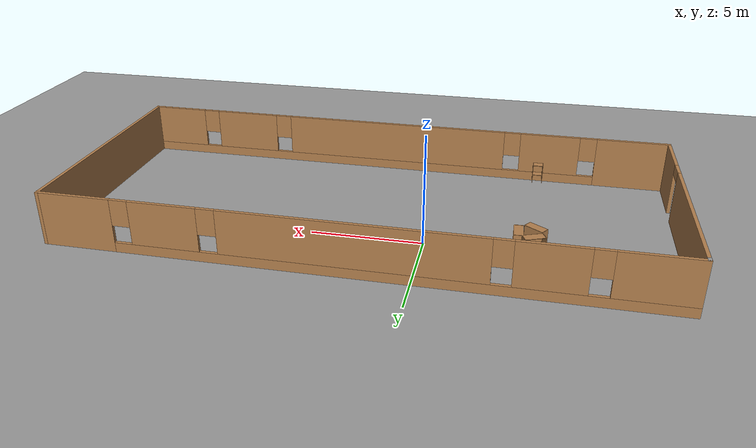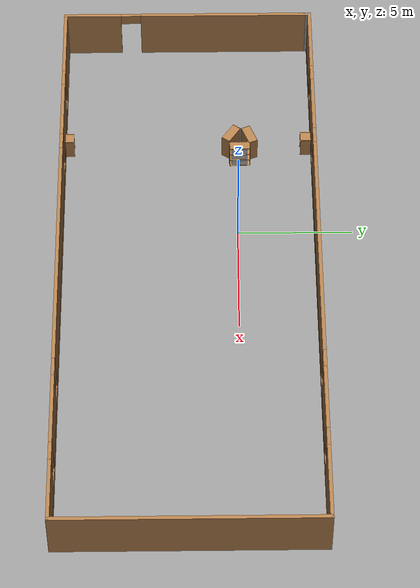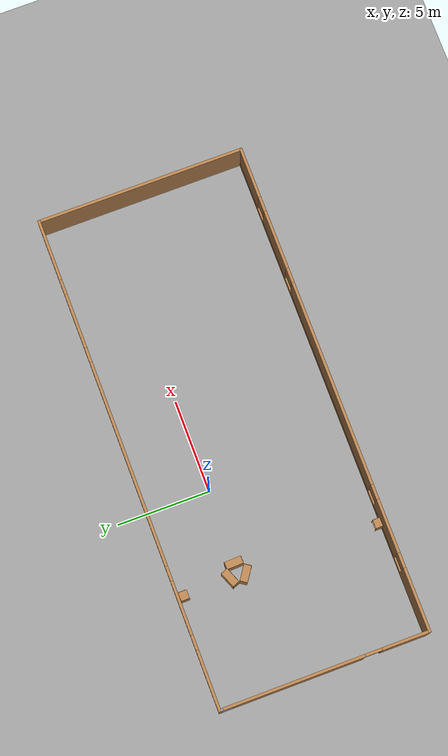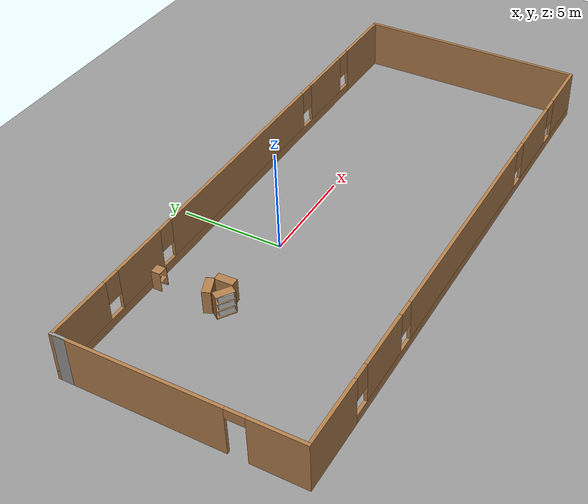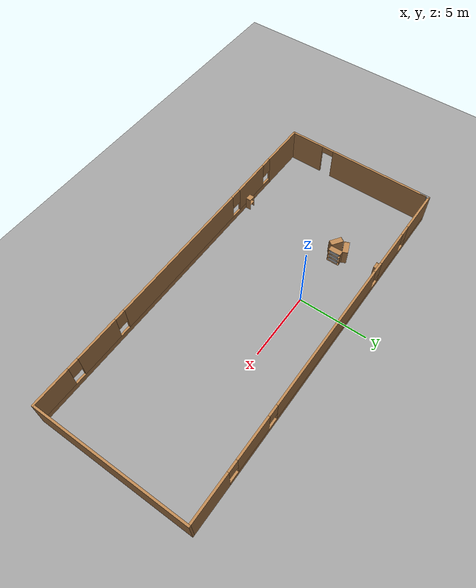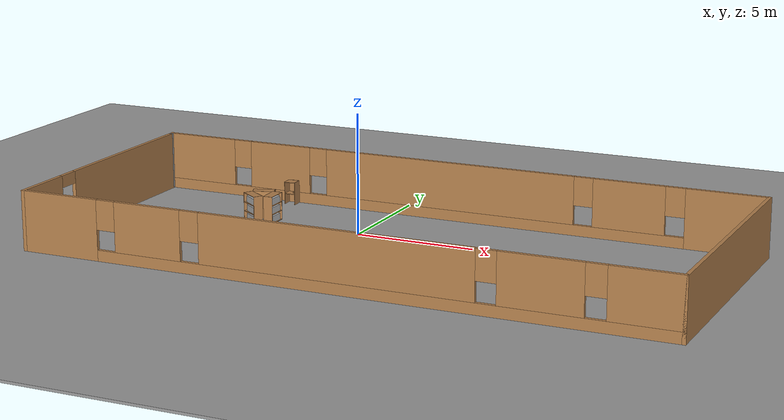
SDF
<sdf version="1.7">
 <world name="default">
  <model name="ground_plane">
   <static>1</static>
   <link name="link">
    <collision name="collision">
     <geometry><plane><normal>0 0 1</normal><size>100 100</size></plane></geometry>
     <surface><friction><ode><mu>100</mu><mu2>50</mu2></ode></friction></surface>
    </collision>
    <visual name="visual">
     <cast_shadows>0</cast_shadows>
     <geometry><plane><normal>0 0 1</normal><size>100 100</size></plane></geometry>
     <material>
      <script><uri>file://media/materials/scripts/gazebo.material</uri><name>Gazebo/Grey</name></script>
     </material>
    </visual>
   </link>
  </model>
  <model name="Library">
   <pose>2.5811 -2.1364 0 0 -0 0</pose>
   <link name="Wall_0">
    <pose>-13.3 -0.125 0 0 -0 -1.5708</pose>
    <visual name="Wall_0_Visual_0">
     <pose>-1.74308 0 1.25 0 -0 0</pose>
     <geometry><box><size>7.51384 0.15 2.5</size></box></geometry>
     <material>
      <script><uri>file://media/materials/scripts/gazebo.material</uri><name>Gazebo/Wood</name></script>
      <ambient>1 1 1 1</ambient>
     </material>
     <meta><layer>0</layer></meta>
    </visual>
    <collision name="Wall_0_Collision_0">
     <geometry><box><size>7.51384 0.15 2.5</size></box></geometry>
     <pose>-1.74308 0 1.25 0 -0 0</pose>
    </collision>
    <visual name="Wall_0_Visual_1">
     <pose>4.20692 0 1.25 0 -0 0</pose>
     <geometry><box><size>2.58616 0.15 2.5</size></box></geometry>
     <material>
      <script><uri>file://media/materials/scripts/gazebo.material</uri><name>Gazebo/Wood</name></script>
      <ambient>1 1 1 1</ambient>
     </material>
     <meta><layer>0</layer></meta>
    </visual>
    <collision name="Wall_0_Collision_1">
     <geometry><box><size>2.58616 0.15 2.5</size></box></geometry>
     <pose>4.20692 0 1.25 0 -0 0</pose>
    </collision>
    <visual name="Wall_0_Visual_2">
     <pose>2.46384 0 2.25 0 -0 0</pose>
     <geometry><box><size>0.9 0.15 0.5</size></box></geometry>
     <material>
      <script><uri>file://media/materials/scripts/gazebo.material</uri><name>Gazebo/Wood</name></script>
      <ambient>1 1 1 1</ambient>
     </material>
     <meta><layer>0</layer></meta>
    </visual>
    <collision name="Wall_0_Collision_2">
     <geometry><box><size>0.9 0.15 0.5</size></box></geometry>
     <pose>2.46384 0 2.25 0 -0 0</pose>
    </collision>
   </link>
   <link name="Wall_1">
    <pose>0 -5.55 0 0 -0 0</pose>
    <visual name="Wall_1_Visual_0">
     <pose>-11.6563 0 1.25 0 -0 0</pose>
     <geometry><box><size>3.43737 0.15 2.5</size></box></geometry>
     <material>
      <script><uri>file://media/materials/scripts/gazebo.material</uri><name>Gazebo/Wood</name></script>
      <ambient>1 1 1 1</ambient>
     </material>
     <meta><layer>0</layer></meta>
    </visual>
    <collision name="Wall_1_Collision_0">
     <geometry><box><size>3.43737 0.15 2.5</size></box></geometry>
     <pose>-11.6563 0 1.25 0 -0 0</pose>
    </collision>
    <visual name="Wall_1_Visual_1">
     <pose>1.71868 0 0.25 0 -0 0</pose>
     <geometry><box><size>23.3126 0.15 0.5</size></box></geometry>
     <material>
      <script><uri>file://media/materials/scripts/gazebo.material</uri><name>Gazebo/Wood</name></script>
      <ambient>1 1 1 1</ambient>
     </material>
     <meta><layer>0</layer></meta>
    </visual>
    <collision name="Wall_1_Collision_1">
     <geometry><box><size>23.3126 0.15 0.5</size></box></geometry>
     <pose>1.71868 0 0.25 0 -0 0</pose>
    </collision>
    <visual name="Wall_1_Visual_2">
     <pose>-7.6969 0 1.5 0 -0 0</pose>
     <geometry><box><size>2.88146 0.15 2</size></box></geometry>
     <material>
      <script><uri>file://media/materials/scripts/gazebo.material</uri><name>Gazebo/Wood</name></script>
      <ambient>1 1 1 1</ambient>
     </material>
     <meta><layer>0</layer></meta>
    </visual>
    <collision name="Wall_1_Collision_2">
     <geometry><box><size>2.88146 0.15 2</size></box></geometry>
     <pose>-7.6969 0 1.5 0 -0 0</pose>
    </collision>
    <visual name="Wall_1_Visual_3">
     <pose>0.131252 0 1.5 0 -0 0</pose>
     <geometry><box><size>11.1749 0.15 2</size></box></geometry>
     <material>
      <script><uri>file://media/materials/scripts/gazebo.material</uri><name>Gazebo/Wood</name></script>
      <ambient>1 1 1 1</ambient>
     </material>
     <meta><layer>0</layer></meta>
    </visual>
    <collision name="Wall_1_Collision_3">
     <geometry><box><size>11.1749 0.15 2</size></box></geometry>
     <pose>0.131252 0 1.5 0 -0 0</pose>
    </collision>
    <visual name="Wall_1_Visual_4">
     <pose>8.14146 0 1.5 0 -0 0</pose>
     <geometry><box><size>3.24556 0.15 2</size></box></geometry>
     <material>
      <script><uri>file://media/materials/scripts/gazebo.material</uri><name>Gazebo/Wood</name></script>
      <ambient>1 1 1 1</ambient>
     </material>
     <meta><layer>0</layer></meta>
    </visual>
    <collision name="Wall_1_Collision_4">
     <geometry><box><size>3.24556 0.15 2</size></box></geometry>
     <pose>8.14146 0 1.5 0 -0 0</pose>
    </collision>
    <visual name="Wall_1_Visual_5">
     <pose>11.9696 0 1.5 0 -0 0</pose>
     <geometry><box><size>2.81076 0.15 2</size></box></geometry>
     <material>
      <script><uri>file://media/materials/scripts/gazebo.material</uri><name>Gazebo/Wood</name></script>
      <ambient>1 1 1 1</ambient>
     </material>
     <meta><layer>0</layer></meta>
    </visual>
    <collision name="Wall_1_Collision_5">
     <geometry><box><size>2.81076 0.15 2</size></box></geometry>
     <pose>11.9696 0 1.5 0 -0 0</pose>
    </collision>
    <visual name="Wall_1_Visual_6">
     <pose>-9.53763 0 1.9 0 -0 0</pose>
     <geometry><box><size>0.8 0.15 1.2</size></box></geometry>
     <material>
      <script><uri>file://media/materials/scripts/gazebo.material</uri><name>Gazebo/Wood</name></script>
      <ambient>1 1 1 1</ambient>
     </material>
     <meta><layer>0</layer></meta>
    </visual>
    <collision name="Wall_1_Collision_6">
     <geometry><box><size>0.8 0.15 1.2</size></box></geometry>
     <pose>-9.53763 0 1.9 0 -0 0</pose>
    </collision>
    <visual name="Wall_1_Visual_7">
     <pose>-5.85617 0 1.9 0 -0 0</pose>
     <geometry><box><size>0.8 0.15 1.2</size></box></geometry>
     <material>
      <script><uri>file://media/materials/scripts/gazebo.material</uri><name>Gazebo/Wood</name></script>
      <ambient>1 1 1 1</ambient>
     </material>
     <meta><layer>0</layer></meta>
    </visual>
    <collision name="Wall_1_Collision_7">
     <geometry><box><size>0.8 0.15 1.2</size></box></geometry>
     <pose>-5.85617 0 1.9 0 -0 0</pose>
    </collision>
    <visual name="Wall_1_Visual_8">
     <pose>6.11868 0 1.9 0 -0 0</pose>
     <geometry><box><size>0.8 0.15 1.2</size></box></geometry>
     <material>
      <script><uri>file://media/materials/scripts/gazebo.material</uri><name>Gazebo/Wood</name></script>
      <ambient>1 1 1 1</ambient>
     </material>
     <meta><layer>0</layer></meta>
    </visual>
    <collision name="Wall_1_Collision_8">
     <geometry><box><size>0.8 0.15 1.2</size></box></geometry>
     <pose>6.11868 0 1.9 0 -0 0</pose>
    </collision>
    <visual name="Wall_1_Visual_9">
     <pose>10.1642 0 1.9 0 -0 0</pose>
     <geometry><box><size>0.8 0.15 1.2</size></box></geometry>
     <material>
      <script><uri>file://media/materials/scripts/gazebo.material</uri><name>Gazebo/Wood</name></script>
      <ambient>1 1 1 1</ambient>
     </material>
     <meta><layer>0</layer></meta>
    </visual>
    <collision name="Wall_1_Collision_9">
     <geometry><box><size>0.8 0.15 1.2</size></box></geometry>
     <pose>10.1642 0 1.9 0 -0 0</pose>
    </collision>
   </link>
   <link name="Wall_2">
    <collision name="Wall_2_Collision">
     <geometry><box><size>11.25 0.15 2.5</size></box></geometry>
     <pose>0 0 1.25 0 -0 0</pose>
    </collision>
    <visual name="Wall_2_Visual">
     <pose>0 0 1.25 0 -0 0</pose>
     <geometry><box><size>11.25 0.15 2.5</size></box></geometry>
     <material>
      <script><uri>file://media/materials/scripts/gazebo.material</uri><name>Gazebo/Wood</name></script>
      <ambient>1 1 1 1</ambient>
     </material>
     <meta><layer>0</layer></meta>
    </visual>
    <pose>13.3 -0 0 0 -0 1.5708</pose>
   </link>
   <link name="Wall_3">
    <pose>0 5.55 0 0 -0 3.14159</pose>
    <visual name="Wall_3_Visual_0">
     <pose>-11.6864 0 1.25 0 -0 0</pose>
     <geometry><box><size>3.37714 0.15 2.5</size></box></geometry>
     <material>
      <script><uri>file://media/materials/scripts/gazebo.material</uri><name>Gazebo/Wood</name></script>
      <ambient>1 1 1 1</ambient>
     </material>
     <meta><layer>0</layer></meta>
    </visual>
    <collision name="Wall_3_Collision_0">
     <geometry><box><size>3.37714 0.15 2.5</size></box></geometry>
     <pose>-11.6864 0 1.25 0 -0 0</pose>
    </collision>
    <visual name="Wall_3_Visual_1">
     <pose>1.68857 0 0.25 0 -0 0</pose>
     <geometry><box><size>23.3729 0.15 0.5</size></box></geometry>
     <material>
      <script><uri>file://media/materials/scripts/gazebo.material</uri><name>Gazebo/Wood</name></script>
      <ambient>1 1 1 1</ambient>
     </material>
     <meta><layer>0</layer></meta>
    </visual>
    <collision name="Wall_3_Collision_1">
     <geometry><box><size>23.3729 0.15 0.5</size></box></geometry>
     <pose>1.68857 0 0.25 0 -0 0</pose>
    </collision>
    <visual name="Wall_3_Visual_2">
     <pose>-7.69644 0 1.5 0 -0 0</pose>
     <geometry><box><size>3.00282 0.15 2</size></box></geometry>
     <material>
      <script><uri>file://media/materials/scripts/gazebo.material</uri><name>Gazebo/Wood</name></script>
      <ambient>1 1 1 1</ambient>
     </material>
     <meta><layer>0</layer></meta>
    </visual>
    <collision name="Wall_3_Collision_2">
     <geometry><box><size>3.00282 0.15 2</size></box></geometry>
     <pose>-7.69644 0 1.5 0 -0 0</pose>
    </collision>
    <visual name="Wall_3_Visual_3">
     <pose>0.151937 0 1.5 0 -0 0</pose>
     <geometry><box><size>11.0939 0.15 2</size></box></geometry>
     <material>
      <script><uri>file://media/materials/scripts/gazebo.material</uri><name>Gazebo/Wood</name></script>
      <ambient>1 1 1 1</ambient>
     </material>
     <meta><layer>0</layer></meta>
    </visual>
    <collision name="Wall_3_Collision_3">
     <geometry><box><size>11.0939 0.15 2</size></box></geometry>
     <pose>0.151937 0 1.5 0 -0 0</pose>
    </collision>
    <visual name="Wall_3_Visual_4">
     <pose>7.91941 0 1.5 0 -0 0</pose>
     <geometry><box><size>2.841 0.15 2</size></box></geometry>
     <material>
      <script><uri>file://media/materials/scripts/gazebo.material</uri><name>Gazebo/Wood</name></script>
      <ambient>1 1 1 1</ambient>
     </material>
     <meta><layer>0</layer></meta>
    </visual>
    <collision name="Wall_3_Collision_4">
     <geometry><box><size>2.841 0.15 2</size></box></geometry>
     <pose>7.91941 0 1.5 0 -0 0</pose>
    </collision>
    <visual name="Wall_3_Visual_5">
     <pose>11.7575 0 1.5 0 -0 0</pose>
     <geometry><box><size>3.23509 0.15 2</size></box></geometry>
     <material>
      <script><uri>file://media/materials/scripts/gazebo.material</uri><name>Gazebo/Wood</name></script>
      <ambient>1 1 1 1</ambient>
     </material>
     <meta><layer>0</layer></meta>
    </visual>
    <collision name="Wall_3_Collision_5">
     <geometry><box><size>3.23509 0.15 2</size></box></geometry>
     <pose>11.7575 0 1.5 0 -0 0</pose>
    </collision>
    <visual name="Wall_3_Visual_6">
     <pose>-9.59786 0 1.9 0 -0 0</pose>
     <geometry><box><size>0.8 0.15 1.2</size></box></geometry>
     <material>
      <script><uri>file://media/materials/scripts/gazebo.material</uri><name>Gazebo/Wood</name></script>
      <ambient>1 1 1 1</ambient>
     </material>
     <meta><layer>0</layer></meta>
    </visual>
    <collision name="Wall_3_Collision_6">
     <geometry><box><size>0.8 0.15 1.2</size></box></geometry>
     <pose>-9.59786 0 1.9 0 -0 0</pose>
    </collision>
    <visual name="Wall_3_Visual_7">
     <pose>-5.79503 0 1.9 0 -0 0</pose>
     <geometry><box><size>0.8 0.15 1.2</size></box></geometry>
     <material>
      <script><uri>file://media/materials/scripts/gazebo.material</uri><name>Gazebo/Wood</name></script>
      <ambient>1 1 1 1</ambient>
     </material>
     <meta><layer>0</layer></meta>
    </visual>
    <collision name="Wall_3_Collision_7">
     <geometry><box><size>0.8 0.15 1.2</size></box></geometry>
     <pose>-5.79503 0 1.9 0 -0 0</pose>
    </collision>
    <visual name="Wall_3_Visual_8">
     <pose>6.09891 0 1.9 0 -0 0</pose>
     <geometry><box><size>0.8 0.15 1.2</size></box></geometry>
     <material>
      <script><uri>file://media/materials/scripts/gazebo.material</uri><name>Gazebo/Wood</name></script>
      <ambient>1 1 1 1</ambient>
     </material>
     <meta><layer>0</layer></meta>
    </visual>
    <collision name="Wall_3_Collision_8">
     <geometry><box><size>0.8 0.15 1.2</size></box></geometry>
     <pose>6.09891 0 1.9 0 -0 0</pose>
    </collision>
    <visual name="Wall_3_Visual_9">
     <pose>9.73991 0 1.9 0 -0 0</pose>
     <geometry><box><size>0.8 0.15 1.2</size></box></geometry>
     <material>
      <script><uri>file://media/materials/scripts/gazebo.material</uri><name>Gazebo/Wood</name></script>
      <ambient>1 1 1 1</ambient>
     </material>
     <meta><layer>0</layer></meta>
    </visual>
    <collision name="Wall_3_Collision_9">
     <geometry><box><size>0.8 0.15 1.2</size></box></geometry>
     <pose>9.73991 0 1.9 0 -0 0</pose>
    </collision>
   </link>
   <link name="Wall_4">
    <collision name="Wall_4_Collision">
     <geometry><box><size>0.75 0.15 2.5</size></box></geometry>
     <pose>0 0 1.25 0 -0 0</pose>
    </collision>
    <visual name="Wall_4_Visual">
     <pose>0 0 1.25 0 -0 0</pose>
     <geometry><box><size>0.75 0.15 2.5</size></box></geometry>
     <material>
      <script><uri>file://media/materials/scripts/gazebo.material</uri><name>Gazebo/Grey</name></script>
      <ambient>1 1 1 1</ambient>
     </material>
     <meta><layer>0</layer></meta>
    </visual>
    <pose>-13.3 5.25 0 0 -0 -1.5708</pose>
   </link>
   <static>1</static>
  </model>
  <model name="ground_plane_0">
   <static>1</static>
   <link name="link">
    <collision name="collision">
     <geometry><plane><normal>0 0 1</normal><size>100 100</size></plane></geometry>
     <surface>
      <contact><collide_bitmask>65535</collide_bitmask></contact>
      <friction><ode><mu>100</mu><mu2>50</mu2></ode></friction>
     </surface>
    </collision>
    <visual name="visual">
     <cast_shadows>0</cast_shadows>
     <geometry><plane><normal>0 0 1</normal><size>100 100</size></plane></geometry>
     <material>
      <script><uri>file://media/materials/scripts/gazebo.material</uri><name>Gazebo/Grey</name></script>
     </material>
    </visual>
   </link>
   <pose>-2.55958 1.44132 0 0 -0 0</pose>
  </model>
  <model name="cabinet">
   <static>1</static>
   <link name="cabinet_bottom_plate">
    <inertial>
     <pose>0 0 -1 0 -0 0</pose>
     <inertia><ixx>2.05</ixx><ixy>0</ixy><ixz>0</ixz><iyy>2.05</iyy><iyz>0</iyz><izz>2.05</izz></inertia>
     <mass>25</mass>
    </inertial>
    <collision name="cabinet_bottom_plate_geom">
     <pose>0 0 0.01 0 -0 0</pose>
     <geometry><box><size>0.45 0.45 0.02</size></box></geometry>
    </collision>
    <visual name="cabinet_bottom_plate_geom_visual">
     <pose>0 0 0.01 0 -0 0</pose>
     <geometry><box><size>0.45 0.45 0.02</size></box></geometry>
     <material>
      <script><uri>file://media/materials/scripts/gazebo.material</uri><name>Gazebo/Wood</name></script>
     </material>
    </visual>
    <collision name="cabinet_bottom_plate_geom_cabinet_back_plate">
     <pose>0.235 0 0.51 0 -0 0</pose>
     <geometry><box><size>0.02 0.45 1.02</size></box></geometry>
    </collision>
    <visual name="cabinet_bottom_plate_geom_cabinet_back_plate_visual">
     <pose>0.235 0 0.51 0 -0 0</pose>
     <geometry><box><size>0.02 0.45 1.02</size></box></geometry>
     <material>
      <script><uri>file://media/materials/scripts/gazebo.material</uri><name>Gazebo/Wood</name></script>
     </material>
    </visual>
    <collision name="cabinet_bottom_plate_geom_cabinet_left_plate">
     <pose>0 0.235 0.51 0 -0 0</pose>
     <geometry><box><size>0.45 0.02 1.02</size></box></geometry>
    </collision>
    <visual name="cabinet_bottom_plate_geom_cabinet_left_plate_visual">
     <pose>0 0.235 0.51 0 -0 0</pose>
     <geometry><box><size>0.45 0.02 1.02</size></box></geometry>
     <material>
      <script><uri>file://media/materials/scripts/gazebo.material</uri><name>Gazebo/Wood</name></script>
     </material>
    </visual>
    <collision name="cabinet_bottom_plate_geom_cabinet_middle_plate">
     <pose>0 0 0.51 0 -0 0</pose>
     <geometry><box><size>0.45 0.45 0.02</size></box></geometry>
    </collision>
    <visual name="cabinet_bottom_plate_geom_cabinet_middle_plate_visual">
     <pose>0 0 0.51 0 -0 0</pose>
     <geometry><box><size>0.45 0.45 0.02</size></box></geometry>
     <material>
      <script><uri>file://media/materials/scripts/gazebo.material</uri><name>Gazebo/Wood</name></script>
     </material>
    </visual>
    <collision name="cabinet_bottom_plate_geom_cabinet_right_plate">
     <pose>0 -0.235 0.51 0 -0 0</pose>
     <geometry><box><size>0.45 0.02 1.02</size></box></geometry>
    </collision>
    <visual name="cabinet_bottom_plate_geom_cabinet_right_plate_visual">
     <pose>0 -0.235 0.51 0 -0 0</pose>
     <geometry><box><size>0.45 0.02 1.02</size></box></geometry>
     <material>
      <script><uri>file://media/materials/scripts/gazebo.material</uri><name>Gazebo/Wood</name></script>
     </material>
    </visual>
    <collision name="cabinet_bottom_plate_geom_cabinet_top_plate">
     <pose>0 0 1.01 0 -0 0</pose>
     <geometry><box><size>0.45 0.45 0.02</size></box></geometry>
    </collision>
    <visual name="cabinet_bottom_plate_geom_cabinet_top_plate_visual">
     <pose>0 0 1.01 0 -0 0</pose>
     <geometry><box><size>0.45 0.45 0.02</size></box></geometry>
     <material>
      <script><uri>file://media/materials/scripts/gazebo.material</uri><name>Gazebo/Wood</name></script>
     </material>
    </visual>
   </link>
   <pose>-4.65296 3.08486 0 0 -0 1.58529</pose>
  </model>
  <model name="cabinet_clone">
   <static>1</static>
   <link name="cabinet_bottom_plate">
    <inertial>
     <pose>0 0 -1 0 -0 0</pose>
     <inertia><ixx>2.05</ixx><ixy>0</ixy><ixz>0</ixz><iyy>2.05</iyy><iyz>0</iyz><izz>2.05</izz></inertia>
     <mass>25</mass>
    </inertial>
    <collision name="cabinet_bottom_plate_geom">
     <pose>0 0 0.01 0 -0 0</pose>
     <geometry><box><size>0.45 0.45 0.02</size></box></geometry>
    </collision>
    <visual name="cabinet_bottom_plate_geom_visual">
     <pose>0 0 0.01 0 -0 0</pose>
     <geometry><box><size>0.45 0.45 0.02</size></box></geometry>
     <material>
      <script><uri>file://media/materials/scripts/gazebo.material</uri><name>Gazebo/Wood</name></script>
     </material>
    </visual>
    <collision name="cabinet_bottom_plate_geom_cabinet_back_plate">
     <pose>0.235 0 0.51 0 -0 0</pose>
     <geometry><box><size>0.02 0.45 1.02</size></box></geometry>
    </collision>
    <visual name="cabinet_bottom_plate_geom_cabinet_back_plate_visual">
     <pose>0.235 0 0.51 0 -0 0</pose>
     <geometry><box><size>0.02 0.45 1.02</size></box></geometry>
     <material>
      <script><uri>file://media/materials/scripts/gazebo.material</uri><name>Gazebo/Wood</name></script>
     </material>
    </visual>
    <collision name="cabinet_bottom_plate_geom_cabinet_left_plate">
     <pose>0 0.235 0.51 0 -0 0</pose>
     <geometry><box><size>0.45 0.02 1.02</size></box></geometry>
    </collision>
    <visual name="cabinet_bottom_plate_geom_cabinet_left_plate_visual">
     <pose>0 0.235 0.51 0 -0 0</pose>
     <geometry><box><size>0.45 0.02 1.02</size></box></geometry>
     <material>
      <script><uri>file://media/materials/scripts/gazebo.material</uri><name>Gazebo/Wood</name></script>
     </material>
    </visual>
    <collision name="cabinet_bottom_plate_geom_cabinet_middle_plate">
     <pose>0 0 0.51 0 -0 0</pose>
     <geometry><box><size>0.45 0.45 0.02</size></box></geometry>
    </collision>
    <visual name="cabinet_bottom_plate_geom_cabinet_middle_plate_visual">
     <pose>0 0 0.51 0 -0 0</pose>
     <geometry><box><size>0.45 0.45 0.02</size></box></geometry>
     <material>
      <script><uri>file://media/materials/scripts/gazebo.material</uri><name>Gazebo/Wood</name></script>
     </material>
    </visual>
    <collision name="cabinet_bottom_plate_geom_cabinet_right_plate">
     <pose>0 -0.235 0.51 0 -0 0</pose>
     <geometry><box><size>0.45 0.02 1.02</size></box></geometry>
    </collision>
    <visual name="cabinet_bottom_plate_geom_cabinet_right_plate_visual">
     <pose>0 -0.235 0.51 0 -0 0</pose>
     <geometry><box><size>0.45 0.02 1.02</size></box></geometry>
     <material>
      <script><uri>file://media/materials/scripts/gazebo.material</uri><name>Gazebo/Wood</name></script>
     </material>
    </visual>
    <collision name="cabinet_bottom_plate_geom_cabinet_top_plate">
     <pose>0 0 1.01 0 -0 0</pose>
     <geometry><box><size>0.45 0.45 0.02</size></box></geometry>
    </collision>
    <visual name="cabinet_bottom_plate_geom_cabinet_top_plate_visual">
     <pose>0 0 1.01 0 -0 0</pose>
     <geometry><box><size>0.45 0.45 0.02</size></box></geometry>
     <material>
      <script><uri>file://media/materials/scripts/gazebo.material</uri><name>Gazebo/Wood</name></script>
     </material>
    </visual>
   </link>
   <pose>-4.65153 -7.45705 0 0 0 -1.55167</pose>
  </model>
  <model name="wood_cube_5cm">
   <link name="link">
    <pose>0 0 0.025 0 -0 0</pose>
    <inertial>
     <mass>0.0565</mass>
     <inertia>
      <ixx>2.35417e-05</ixx>
      <ixy>0</ixy>
      <ixz>0</ixz>
      <iyy>2.35417e-05</iyy>
      <iyz>0</iyz>
      <izz>2.35417e-05</izz>
     </inertia>
    </inertial>
    <collision name="collision">
     <geometry><box><size>0.05 0.05 0.05</size></box></geometry>
     <surface>
      <contact>
       <poissons_ratio>0.347</poissons_ratio>
       <elastic_modulus>8.8e+09</elastic_modulus>
       <ode><kp>100000</kp><kd>1</kd><max_vel>1</max_vel><min_depth>0.001</min_depth></ode>
      </contact>
      <friction>
       <torsional>
        <coefficient>1</coefficient>
        <use_patch_radius>0</use_patch_radius>
        <surface_radius>0.05</surface_radius>
       </torsional>
      </friction>
     </surface>
    </collision>
    <visual name="visual">
     <geometry><box><size>0.05 0.05 0.05</size></box></geometry>
     <material>
      <script><uri>file://media/materials/scripts/gazebo.material</uri><name>Gazebo/Wood</name></script>
     </material>
    </visual>
   </link>
   <pose>-4.57316 3.08026 0.518999 0 -0 0</pose>
  </model>
  <model name="wooden_board">
   <link name="base">
    <pose>0 0 0.00523 0 -0 0</pose>
    <inertial>
     <mass>0.2765</mass>
     <inertia>
      <ixx>0.0025148</ixx>
      <ixy>0</ixy>
      <ixz>0</ixz>
      <iyy>0.00024037</iyy>
      <iyz>0</iyz>
      <izz>0.00275013</izz>
     </inertia>
    </inertial>
    <collision name="collision">
     <geometry><box><size>0.1016 0.3302 0.01046</size></box></geometry>
     <surface>
      <contact>
       <poissons_ratio>0.347</poissons_ratio>
       <elastic_modulus>8.8e+09</elastic_modulus>
       <ode><kp>100000</kp><kd>100</kd><max_vel>100</max_vel><min_depth>0.001</min_depth></ode>
      </contact>
      <friction>
       <torsional>
        <coefficient>1</coefficient>
        <use_patch_radius>0</use_patch_radius>
        <surface_radius>0.01</surface_radius>
       </torsional>
      </friction>
     </surface>
    </collision>
    <visual name="visual">
     <geometry><box><size>0.1016 0.3302 0.01046</size></box></geometry>
     <material>
      <script><uri>file://media/materials/scripts/gazebo.material</uri><name>Gazebo/Wood</name></script>
     </material>
    </visual>
    <visual name="tee_nut_1">
     <pose>0 -0.116 0 0 -0 0</pose>
     <geometry><cylinder><radius>0.00635</radius><length>0.0105646</length></cylinder></geometry>
     <material>
      <script><uri>file://media/materials/scripts/gazebo.material</uri><name>Gazebo/Grey</name></script>
     </material>
    </visual>
    <visual name="tee_nut_2">
     <pose>0 -0.038 0 0 -0 0</pose>
     <geometry><cylinder><radius>0.00635</radius><length>0.0105646</length></cylinder></geometry>
     <material>
      <script><uri>file://media/materials/scripts/gazebo.material</uri><name>Gazebo/Grey</name></script>
     </material>
    </visual>
    <visual name="tee_nut_3">
     <pose>0 0.038 0 0 -0 0</pose>
     <geometry><cylinder><radius>0.00635</radius><length>0.0105646</length></cylinder></geometry>
     <material>
      <script><uri>file://media/materials/scripts/gazebo.material</uri><name>Gazebo/Grey</name></script>
     </material>
    </visual>
    <visual name="tee_nut_4">
     <pose>0 0.116 0 0 -0 0</pose>
     <geometry><cylinder><radius>0.00635</radius><length>0.0105646</length></cylinder></geometry>
     <material>
      <script><uri>file://media/materials/scripts/gazebo.material</uri><name>Gazebo/Grey</name></script>
     </material>
    </visual>
   </link>
   <pose>-4.63944 3.06096 0.034725 0.026265 -0.038457 -0.315178</pose>
  </model>
  <model name="wooden_board_clone">
   <link name="base">
    <pose>0 0 0.00523 0 -0 0</pose>
    <inertial>
     <mass>0.2765</mass>
     <inertia>
      <ixx>0.0025148</ixx>
      <ixy>0</ixy>
      <ixz>0</ixz>
      <iyy>0.00024037</iyy>
      <iyz>0</iyz>
      <izz>0.00275013</izz>
     </inertia>
    </inertial>
    <collision name="collision">
     <geometry><box><size>0.1016 0.3302 0.01046</size></box></geometry>
     <surface>
      <contact>
       <poissons_ratio>0.347</poissons_ratio>
       <elastic_modulus>8.8e+09</elastic_modulus>
       <ode><kp>100000</kp><kd>100</kd><max_vel>100</max_vel><min_depth>0.001</min_depth></ode>
      </contact>
      <friction>
       <torsional>
        <coefficient>1</coefficient>
        <use_patch_radius>0</use_patch_radius>
        <surface_radius>0.01</surface_radius>
       </torsional>
      </friction>
     </surface>
    </collision>
    <visual name="visual">
     <geometry><box><size>0.1016 0.3302 0.01046</size></box></geometry>
     <material>
      <script><uri>file://media/materials/scripts/gazebo.material</uri><name>Gazebo/Wood</name></script>
     </material>
    </visual>
    <visual name="tee_nut_1">
     <pose>0 -0.116 0 0 -0 0</pose>
     <geometry><cylinder><radius>0.00635</radius><length>0.0105646</length></cylinder></geometry>
     <material>
      <script><uri>file://media/materials/scripts/gazebo.material</uri><name>Gazebo/Grey</name></script>
     </material>
    </visual>
    <visual name="tee_nut_2">
     <pose>0 -0.038 0 0 -0 0</pose>
     <geometry><cylinder><radius>0.00635</radius><length>0.0105646</length></cylinder></geometry>
     <material>
      <script><uri>file://media/materials/scripts/gazebo.material</uri><name>Gazebo/Grey</name></script>
     </material>
    </visual>
    <visual name="tee_nut_3">
     <pose>0 0.038 0 0 -0 0</pose>
     <geometry><cylinder><radius>0.00635</radius><length>0.0105646</length></cylinder></geometry>
     <material>
      <script><uri>file://media/materials/scripts/gazebo.material</uri><name>Gazebo/Grey</name></script>
     </material>
    </visual>
    <visual name="tee_nut_4">
     <pose>0 0.116 0 0 -0 0</pose>
     <geometry><cylinder><radius>0.00635</radius><length>0.0105646</length></cylinder></geometry>
     <material>
      <script><uri>file://media/materials/scripts/gazebo.material</uri><name>Gazebo/Grey</name></script>
     </material>
    </visual>
   </link>
   <pose>-4.49198 3.09579 0.025318 0.009432 0.094388 0.081792</pose>
  </model>
  <model name="wooden_board_clone_0">
   <link name="base">
    <pose>0 0 0.00523 0 -0 0</pose>
    <inertial>
     <mass>0.2765</mass>
     <inertia>
      <ixx>0.0025148</ixx>
      <ixy>0</ixy>
      <ixz>0</ixz>
      <iyy>0.00024037</iyy>
      <iyz>0</iyz>
      <izz>0.00275013</izz>
     </inertia>
    </inertial>
    <collision name="collision">
     <geometry><box><size>0.1016 0.3302 0.01046</size></box></geometry>
     <surface>
      <contact>
       <poissons_ratio>0.347</poissons_ratio>
       <elastic_modulus>8.8e+09</elastic_modulus>
       <ode><kp>100000</kp><kd>100</kd><max_vel>100</max_vel><min_depth>0.001</min_depth></ode>
      </contact>
      <friction>
       <torsional>
        <coefficient>1</coefficient>
        <use_patch_radius>0</use_patch_radius>
        <surface_radius>0.01</surface_radius>
       </torsional>
      </friction>
     </surface>
    </collision>
    <visual name="visual">
     <geometry><box><size>0.1016 0.3302 0.01046</size></box></geometry>
     <material>
      <script><uri>file://media/materials/scripts/gazebo.material</uri><name>Gazebo/Wood</name></script>
     </material>
    </visual>
    <visual name="tee_nut_1">
     <pose>0 -0.116 0 0 -0 0</pose>
     <geometry><cylinder><radius>0.00635</radius><length>0.0105646</length></cylinder></geometry>
     <material>
      <script><uri>file://media/materials/scripts/gazebo.material</uri><name>Gazebo/Grey</name></script>
     </material>
    </visual>
    <visual name="tee_nut_2">
     <pose>0 -0.038 0 0 -0 0</pose>
     <geometry><cylinder><radius>0.00635</radius><length>0.0105646</length></cylinder></geometry>
     <material>
      <script><uri>file://media/materials/scripts/gazebo.material</uri><name>Gazebo/Grey</name></script>
     </material>
    </visual>
    <visual name="tee_nut_3">
     <pose>0 0.038 0 0 -0 0</pose>
     <geometry><cylinder><radius>0.00635</radius><length>0.0105646</length></cylinder></geometry>
     <material>
      <script><uri>file://media/materials/scripts/gazebo.material</uri><name>Gazebo/Grey</name></script>
     </material>
    </visual>
    <visual name="tee_nut_4">
     <pose>0 0.116 0 0 -0 0</pose>
     <geometry><cylinder><radius>0.00635</radius><length>0.0105646</length></cylinder></geometry>
     <material>
      <script><uri>file://media/materials/scripts/gazebo.material</uri><name>Gazebo/Grey</name></script>
     </material>
    </visual>
   </link>
   <pose>-4.7798 3.0808 0.01899 1.9e-05 5.2e-05 0.001004</pose>
  </model>
  <model name="wooden_board_clone_1">
   <link name="base">
    <pose>0 0 0.00523 0 -0 0</pose>
    <inertial>
     <mass>0.2765</mass>
     <inertia>
      <ixx>0.0025148</ixx>
      <ixy>0</ixy>
      <ixz>0</ixz>
      <iyy>0.00024037</iyy>
      <iyz>0</iyz>
      <izz>0.00275013</izz>
     </inertia>
    </inertial>
    <collision name="collision">
     <geometry><box><size>0.1016 0.3302 0.01046</size></box></geometry>
     <surface>
      <contact>
       <poissons_ratio>0.347</poissons_ratio>
       <elastic_modulus>8.8e+09</elastic_modulus>
       <ode><kp>100000</kp><kd>100</kd><max_vel>100</max_vel><min_depth>0.001</min_depth></ode>
      </contact>
      <friction>
       <torsional>
        <coefficient>1</coefficient>
        <use_patch_radius>0</use_patch_radius>
        <surface_radius>0.01</surface_radius>
       </torsional>
      </friction>
     </surface>
    </collision>
    <visual name="visual">
     <geometry><box><size>0.1016 0.3302 0.01046</size></box></geometry>
     <material>
      <script><uri>file://media/materials/scripts/gazebo.material</uri><name>Gazebo/Wood</name></script>
     </material>
    </visual>
    <visual name="tee_nut_1">
     <pose>0 -0.116 0 0 -0 0</pose>
     <geometry><cylinder><radius>0.00635</radius><length>0.0105646</length></cylinder></geometry>
     <material>
      <script><uri>file://media/materials/scripts/gazebo.material</uri><name>Gazebo/Grey</name></script>
     </material>
    </visual>
    <visual name="tee_nut_2">
     <pose>0 -0.038 0 0 -0 0</pose>
     <geometry><cylinder><radius>0.00635</radius><length>0.0105646</length></cylinder></geometry>
     <material>
      <script><uri>file://media/materials/scripts/gazebo.material</uri><name>Gazebo/Grey</name></script>
     </material>
    </visual>
    <visual name="tee_nut_3">
     <pose>0 0.038 0 0 -0 0</pose>
     <geometry><cylinder><radius>0.00635</radius><length>0.0105646</length></cylinder></geometry>
     <material>
      <script><uri>file://media/materials/scripts/gazebo.material</uri><name>Gazebo/Grey</name></script>
     </material>
    </visual>
    <visual name="tee_nut_4">
     <pose>0 0.116 0 0 -0 0</pose>
     <geometry><cylinder><radius>0.00635</radius><length>0.0105646</length></cylinder></geometry>
     <material>
      <script><uri>file://media/materials/scripts/gazebo.material</uri><name>Gazebo/Grey</name></script>
     </material>
    </visual>
   </link>
   <pose>-4.57509 3.1119 0.018982 -2.9e-05 0.000223 -0.018421</pose>
  </model>
  <model name="wooden_board_clone_2">
   <link name="base">
    <pose>0 0 0.00523 0 -0 0</pose>
    <inertial>
     <mass>0.2765</mass>
     <inertia>
      <ixx>0.0025148</ixx>
      <ixy>0</ixy>
      <ixz>0</ixz>
      <iyy>0.00024037</iyy>
      <iyz>0</iyz>
      <izz>0.00275013</izz>
     </inertia>
    </inertial>
    <collision name="collision">
     <geometry><box><size>0.1016 0.3302 0.01046</size></box></geometry>
     <surface>
      <contact>
       <poissons_ratio>0.347</poissons_ratio>
       <elastic_modulus>8.8e+09</elastic_modulus>
       <ode><kp>100000</kp><kd>100</kd><max_vel>100</max_vel><min_depth>0.001</min_depth></ode>
      </contact>
      <friction>
       <torsional>
        <coefficient>1</coefficient>
        <use_patch_radius>0</use_patch_radius>
        <surface_radius>0.01</surface_radius>
       </torsional>
      </friction>
     </surface>
    </collision>
    <visual name="visual">
     <geometry><box><size>0.1016 0.3302 0.01046</size></box></geometry>
     <material>
      <script><uri>file://media/materials/scripts/gazebo.material</uri><name>Gazebo/Wood</name></script>
     </material>
    </visual>
    <visual name="tee_nut_1">
     <pose>0 -0.116 0 0 -0 0</pose>
     <geometry><cylinder><radius>0.00635</radius><length>0.0105646</length></cylinder></geometry>
     <material>
      <script><uri>file://media/materials/scripts/gazebo.material</uri><name>Gazebo/Grey</name></script>
     </material>
    </visual>
    <visual name="tee_nut_2">
     <pose>0 -0.038 0 0 -0 0</pose>
     <geometry><cylinder><radius>0.00635</radius><length>0.0105646</length></cylinder></geometry>
     <material>
      <script><uri>file://media/materials/scripts/gazebo.material</uri><name>Gazebo/Grey</name></script>
     </material>
    </visual>
    <visual name="tee_nut_3">
     <pose>0 0.038 0 0 -0 0</pose>
     <geometry><cylinder><radius>0.00635</radius><length>0.0105646</length></cylinder></geometry>
     <material>
      <script><uri>file://media/materials/scripts/gazebo.material</uri><name>Gazebo/Grey</name></script>
     </material>
    </visual>
    <visual name="tee_nut_4">
     <pose>0 0.116 0 0 -0 0</pose>
     <geometry><cylinder><radius>0.00635</radius><length>0.0105646</length></cylinder></geometry>
     <material>
      <script><uri>file://media/materials/scripts/gazebo.material</uri><name>Gazebo/Grey</name></script>
     </material>
    </visual>
   </link>
   <pose>-4.45863 3.0454 0.082565 2.93432 1.50402 3.06166</pose>
  </model>
  <model name="bookshelf_clone_clone_clone_1_clone_0_clone_2_clone">
   <static>1</static>
   <link name="link">
    <inertial><mass>1</mass></inertial>
    <collision name="back">
     <pose>0 0.005 0.6 0 -0 0</pose>
     <geometry><box><size>0.9 0.01 1.2</size></box></geometry>
    </collision>
    <visual name="visual1">
     <pose>0 0.005 0.6 0 -0 0</pose>
     <geometry><box><size>0.9 0.01 1.2</size></box></geometry>
     <material>
      <script><uri>file://media/materials/scripts/gazebo.material</uri><name>Gazebo/Wood</name></script>
     </material>
    </visual>
    <collision name="left_side">
     <pose>0.45 -0.195 0.6 0 -0 0</pose>
     <geometry><box><size>0.02 0.4 1.2</size></box></geometry>
    </collision>
    <visual name="visual2">
     <pose>0.45 -0.195 0.6 0 -0 0</pose>
     <geometry><box><size>0.02 0.4 1.2</size></box></geometry>
     <material>
      <script><uri>file://media/materials/scripts/gazebo.material</uri><name>Gazebo/Wood</name></script>
     </material>
    </visual>
    <collision name="right_side">
     <pose>-0.45 -0.195 0.6 0 -0 0</pose>
     <geometry><box><size>0.02 0.4 1.2</size></box></geometry>
    </collision>
    <visual name="visual3">
     <pose>-0.45 -0.195 0.6 0 -0 0</pose>
     <geometry><box><size>0.02 0.4 1.2</size></box></geometry>
     <material>
      <script><uri>file://media/materials/scripts/gazebo.material</uri><name>Gazebo/Wood</name></script>
     </material>
    </visual>
    <collision name="bottom">
     <pose>0 -0.195 0.03 0 -0 0</pose>
     <geometry><box><size>0.88 0.4 0.06</size></box></geometry>
    </collision>
    <visual name="visual4">
     <pose>0 -0.195 0.03 0 -0 0</pose>
     <geometry><box><size>0.88 0.4 0.06</size></box></geometry>
     <material>
      <script><uri>file://media/materials/scripts/gazebo.material</uri><name>Gazebo/Wood</name></script>
     </material>
    </visual>
    <collision name="top">
     <pose>0 -0.195 1.19 0 -0 0</pose>
     <geometry><box><size>0.88 0.4 0.02</size></box></geometry>
    </collision>
    <visual name="visual5">
     <pose>0 -0.195 1.19 0 -0 0</pose>
     <geometry><box><size>0.88 0.4 0.02</size></box></geometry>
     <material>
      <script><uri>file://media/materials/scripts/gazebo.material</uri><name>Gazebo/Wood</name></script>
     </material>
    </visual>
    <collision name="low_shelf">
     <pose>0 -0.195 0.43 0 -0 0</pose>
     <geometry><box><size>0.88 0.4 0.02</size></box></geometry>
    </collision>
    <visual name="visual6">
     <pose>0 -0.195 0.43 0 -0 0</pose>
     <geometry><box><size>0.88 0.4 0.02</size></box></geometry>
     <material>
      <script><uri>file://media/materials/scripts/gazebo.material</uri><name>Gazebo/Wood</name></script>
     </material>
    </visual>
    <collision name="high_shelf">
     <pose>0 -0.195 0.8 0 -0 0</pose>
     <geometry><box><size>0.88 0.4 0.02</size></box></geometry>
    </collision>
    <visual name="visual7">
     <pose>0 -0.195 0.8 0 -0 0</pose>
     <geometry><box><size>0.88 0.4 0.02</size></box></geometry>
     <material>
      <script><uri>file://media/materials/scripts/gazebo.material</uri><name>Gazebo/Wood</name></script>
     </material>
    </visual>
   </link>
   <pose>-4.19224 0.144885 0.012624 0 -0 1.60042</pose>
  </model>
  <model name="bookshelf_clone_clone_clone_1_clone_0_clone_1_clone">
   <static>1</static>
   <link name="link">
    <inertial><mass>1</mass></inertial>
    <collision name="back">
     <pose>0 0.005 0.6 0 -0 0</pose>
     <geometry><box><size>0.9 0.01 1.2</size></box></geometry>
    </collision>
    <visual name="visual1">
     <pose>0 0.005 0.6 0 -0 0</pose>
     <geometry><box><size>0.9 0.01 1.2</size></box></geometry>
     <material>
      <script><uri>file://media/materials/scripts/gazebo.material</uri><name>Gazebo/Wood</name></script>
     </material>
    </visual>
    <collision name="left_side">
     <pose>0.45 -0.195 0.6 0 -0 0</pose>
     <geometry><box><size>0.02 0.4 1.2</size></box></geometry>
    </collision>
    <visual name="visual2">
     <pose>0.45 -0.195 0.6 0 -0 0</pose>
     <geometry><box><size>0.02 0.4 1.2</size></box></geometry>
     <material>
      <script><uri>file://media/materials/scripts/gazebo.material</uri><name>Gazebo/Wood</name></script>
     </material>
    </visual>
    <collision name="right_side">
     <pose>-0.45 -0.195 0.6 0 -0 0</pose>
     <geometry><box><size>0.02 0.4 1.2</size></box></geometry>
    </collision>
    <visual name="visual3">
     <pose>-0.45 -0.195 0.6 0 -0 0</pose>
     <geometry><box><size>0.02 0.4 1.2</size></box></geometry>
     <material>
      <script><uri>file://media/materials/scripts/gazebo.material</uri><name>Gazebo/Wood</name></script>
     </material>
    </visual>
    <collision name="bottom">
     <pose>0 -0.195 0.03 0 -0 0</pose>
     <geometry><box><size>0.88 0.4 0.06</size></box></geometry>
    </collision>
    <visual name="visual4">
     <pose>0 -0.195 0.03 0 -0 0</pose>
     <geometry><box><size>0.88 0.4 0.06</size></box></geometry>
     <material>
      <script><uri>file://media/materials/scripts/gazebo.material</uri><name>Gazebo/Wood</name></script>
     </material>
    </visual>
    <collision name="top">
     <pose>0 -0.195 1.19 0 -0 0</pose>
     <geometry><box><size>0.88 0.4 0.02</size></box></geometry>
    </collision>
    <visual name="visual5">
     <pose>0 -0.195 1.19 0 -0 0</pose>
     <geometry><box><size>0.88 0.4 0.02</size></box></geometry>
     <material>
      <script><uri>file://media/materials/scripts/gazebo.material</uri><name>Gazebo/Wood</name></script>
     </material>
    </visual>
    <collision name="low_shelf">
     <pose>0 -0.195 0.43 0 -0 0</pose>
     <geometry><box><size>0.88 0.4 0.02</size></box></geometry>
    </collision>
    <visual name="visual6">
     <pose>0 -0.195 0.43 0 -0 0</pose>
     <geometry><box><size>0.88 0.4 0.02</size></box></geometry>
     <material>
      <script><uri>file://media/materials/scripts/gazebo.material</uri><name>Gazebo/Wood</name></script>
     </material>
    </visual>
    <collision name="high_shelf">
     <pose>0 -0.195 0.8 0 -0 0</pose>
     <geometry><box><size>0.88 0.4 0.02</size></box></geometry>
    </collision>
    <visual name="visual7">
     <pose>0 -0.195 0.8 0 -0 0</pose>
     <geometry><box><size>0.88 0.4 0.02</size></box></geometry>
     <material>
      <script><uri>file://media/materials/scripts/gazebo.material</uri><name>Gazebo/Wood</name></script>
     </material>
    </visual>
   </link>
   <pose>-4.60038 -0.059924 0.029212 0 0 -0.598378</pose>
  </model>
  <model name="bookshelf_clone_clone_clone_1_clone_0_clone_3_clone">
   <static>1</static>
   <link name="link">
    <inertial><mass>1</mass></inertial>
    <collision name="back">
     <pose>0 0.005 0.6 0 -0 0</pose>
     <geometry><box><size>0.9 0.01 1.2</size></box></geometry>
    </collision>
    <visual name="visual1">
     <pose>0 0.005 0.6 0 -0 0</pose>
     <geometry><box><size>0.9 0.01 1.2</size></box></geometry>
     <material>
      <script><uri>file://media/materials/scripts/gazebo.material</uri><name>Gazebo/Wood</name></script>
     </material>
    </visual>
    <collision name="left_side">
     <pose>0.45 -0.195 0.6 0 -0 0</pose>
     <geometry><box><size>0.02 0.4 1.2</size></box></geometry>
    </collision>
    <visual name="visual2">
     <pose>0.45 -0.195 0.6 0 -0 0</pose>
     <geometry><box><size>0.02 0.4 1.2</size></box></geometry>
     <material>
      <script><uri>file://media/materials/scripts/gazebo.material</uri><name>Gazebo/Wood</name></script>
     </material>
    </visual>
    <collision name="right_side">
     <pose>-0.45 -0.195 0.6 0 -0 0</pose>
     <geometry><box><size>0.02 0.4 1.2</size></box></geometry>
    </collision>
    <visual name="visual3">
     <pose>-0.45 -0.195 0.6 0 -0 0</pose>
     <geometry><box><size>0.02 0.4 1.2</size></box></geometry>
     <material>
      <script><uri>file://media/materials/scripts/gazebo.material</uri><name>Gazebo/Wood</name></script>
     </material>
    </visual>
    <collision name="bottom">
     <pose>0 -0.195 0.03 0 -0 0</pose>
     <geometry><box><size>0.88 0.4 0.06</size></box></geometry>
    </collision>
    <visual name="visual4">
     <pose>0 -0.195 0.03 0 -0 0</pose>
     <geometry><box><size>0.88 0.4 0.06</size></box></geometry>
     <material>
      <script><uri>file://media/materials/scripts/gazebo.material</uri><name>Gazebo/Wood</name></script>
     </material>
    </visual>
    <collision name="top">
     <pose>0 -0.195 1.19 0 -0 0</pose>
     <geometry><box><size>0.88 0.4 0.02</size></box></geometry>
    </collision>
    <visual name="visual5">
     <pose>0 -0.195 1.19 0 -0 0</pose>
     <geometry><box><size>0.88 0.4 0.02</size></box></geometry>
     <material>
      <script><uri>file://media/materials/scripts/gazebo.material</uri><name>Gazebo/Wood</name></script>
     </material>
    </visual>
    <collision name="low_shelf">
     <pose>0 -0.195 0.43 0 -0 0</pose>
     <geometry><box><size>0.88 0.4 0.02</size></box></geometry>
    </collision>
    <visual name="visual6">
     <pose>0 -0.195 0.43 0 -0 0</pose>
     <geometry><box><size>0.88 0.4 0.02</size></box></geometry>
     <material>
      <script><uri>file://media/materials/scripts/gazebo.material</uri><name>Gazebo/Wood</name></script>
     </material>
    </visual>
    <collision name="high_shelf">
     <pose>0 -0.195 0.8 0 -0 0</pose>
     <geometry><box><size>0.88 0.4 0.02</size></box></geometry>
    </collision>
    <visual name="visual7">
     <pose>0 -0.195 0.8 0 -0 0</pose>
     <geometry><box><size>0.88 0.4 0.02</size></box></geometry>
     <material>
      <script><uri>file://media/materials/scripts/gazebo.material</uri><name>Gazebo/Wood</name></script>
     </material>
    </visual>
   </link>
   <pose>-4.56929 0.40552 0.012624 0 0 -2.75538</pose>
  </model>
  <model name="book1.xacro_clone_16_clone_clone">
   <link name="base_footprint">
    <inertial>
     <pose>1 1 1.5 0 -0 0</pose>
     <mass>6</mass>
     <inertia><ixx>0.7503</ixx><ixy>0</ixy><ixz>0</ixz><iyy>0.7503</iyy><iyz>0</iyz><izz>0.003</izz></inertia>
    </inertial>
    <collision name="base_footprint_fixed_joint_lump__base_link_collision">
     <pose>1 1 1 0 -0 0</pose>
     <geometry><box><size>0.7 0.2 0.27</size></box></geometry>
    </collision>
    <collision name="base_footprint_fixed_joint_lump__book_link_2_collision_1">
     <pose>1 1 1.375 0 -0 0</pose>
     <geometry><box><size>0.7 0.2 0.27</size></box></geometry>
    </collision>
    <collision name="base_footprint_fixed_joint_lump__book_link_3_collision_2">
     <pose>1 1 1.75 0 -0 0</pose>
     <geometry><box><size>0.7 0.2 0.27</size></box></geometry>
    </collision>
    <visual name="base_footprint_fixed_joint_lump__base_link_visual">
     <pose>1 1 1 0 -0 0</pose>
     <geometry><box><size>0.7 0.2 0.27</size></box></geometry>
    </visual>
    <visual name="base_footprint_fixed_joint_lump__book_link_2_visual_1">
     <pose>1 1 1.375 0 -0 0</pose>
     <geometry><box><size>0.7 0.2 0.27</size></box></geometry>
    </visual>
    <visual name="base_footprint_fixed_joint_lump__book_link_3_visual_2">
     <pose>1 1 1.75 0 -0 0</pose>
     <geometry><box><size>0.7 0.2 0.27</size></box></geometry>
    </visual>
   </link>
   <frame name="book_joint_2" attached_to="base_link"><pose>0 0 0.375 0 -0 0</pose></frame>
   <frame name="book_link_2" attached_to="book_joint_2"/>
   <frame name="book_joint_3" attached_to="base_link"><pose>0 0 0.75 0 -0 0</pose></frame>
   <frame name="book_link_3" attached_to="book_joint_3"/>
   <frame name="base_joint" attached_to="base_footprint"><pose>1 1 1 0 -0 0</pose></frame>
   <frame name="base_link" attached_to="base_joint"/>
   <pose>-2.95847 -0.877726 -0.787394 -0 -1.3e-05 1.55574</pose>
  </model>
  <model name="book1.xacro_clone_16_clone_clone_1_clone">
   <link name="base_footprint">
    <inertial>
     <pose>1 1 1.5 0 -0 0</pose>
     <mass>6</mass>
     <inertia><ixx>0.7503</ixx><ixy>0</ixy><ixz>0</ixz><iyy>0.7503</iyy><iyz>0</iyz><izz>0.003</izz></inertia>
    </inertial>
    <collision name="base_footprint_fixed_joint_lump__base_link_collision">
     <pose>1 1 1 0 -0 0</pose>
     <geometry><box><size>0.7 0.2 0.27</size></box></geometry>
    </collision>
    <collision name="base_footprint_fixed_joint_lump__book_link_2_collision_1">
     <pose>1 1 1.375 0 -0 0</pose>
     <geometry><box><size>0.7 0.2 0.27</size></box></geometry>
    </collision>
    <collision name="base_footprint_fixed_joint_lump__book_link_3_collision_2">
     <pose>1 1 1.75 0 -0 0</pose>
     <geometry><box><size>0.7 0.2 0.27</size></box></geometry>
    </collision>
    <visual name="base_footprint_fixed_joint_lump__base_link_visual">
     <pose>1 1 1 0 -0 0</pose>
     <geometry><box><size>0.7 0.2 0.27</size></box></geometry>
    </visual>
    <visual name="base_footprint_fixed_joint_lump__book_link_2_visual_1">
     <pose>1 1 1.375 0 -0 0</pose>
     <geometry><box><size>0.7 0.2 0.27</size></box></geometry>
    </visual>
    <visual name="base_footprint_fixed_joint_lump__book_link_3_visual_2">
     <pose>1 1 1.75 0 -0 0</pose>
     <geometry><box><size>0.7 0.2 0.27</size></box></geometry>
    </visual>
   </link>
   <frame name="book_joint_2" attached_to="base_link"><pose>0 0 0.375 0 -0 0</pose></frame>
   <frame name="book_link_2" attached_to="book_joint_2"/>
   <frame name="book_joint_3" attached_to="base_link"><pose>0 0 0.75 0 -0 0</pose></frame>
   <frame name="book_link_3" attached_to="book_joint_3"/>
   <frame name="base_joint" attached_to="base_footprint"><pose>1 1 1 0 -0 0</pose></frame>
   <frame name="base_link" attached_to="base_joint"/>
   <pose>-3.3084 -0.097222 -0.77078 -0 1.2e-05 2.4884</pose>
  </model>
 </world>
</sdf>
